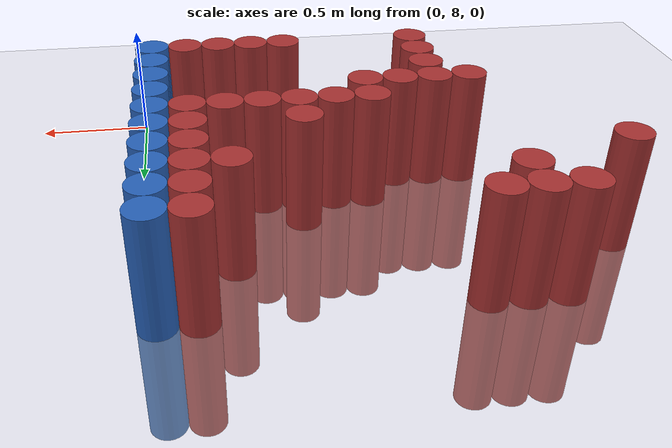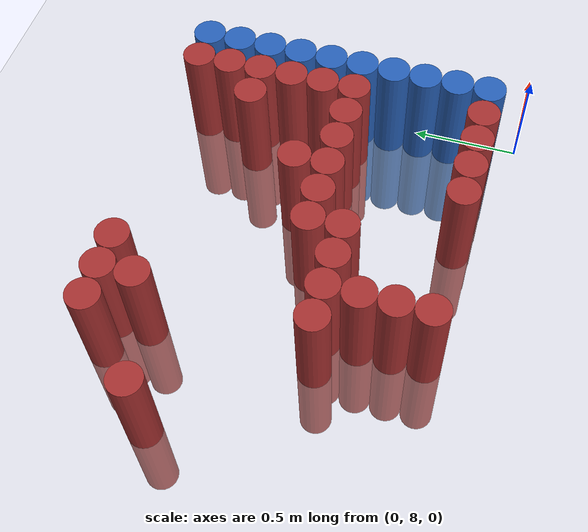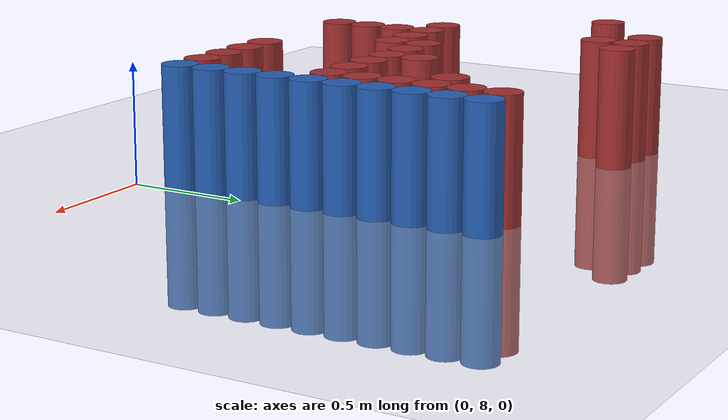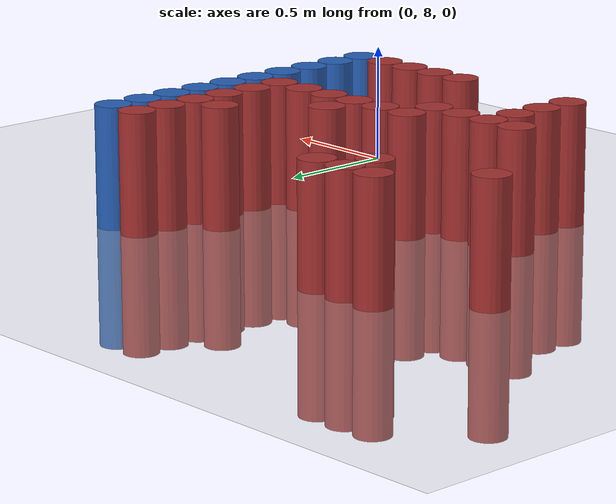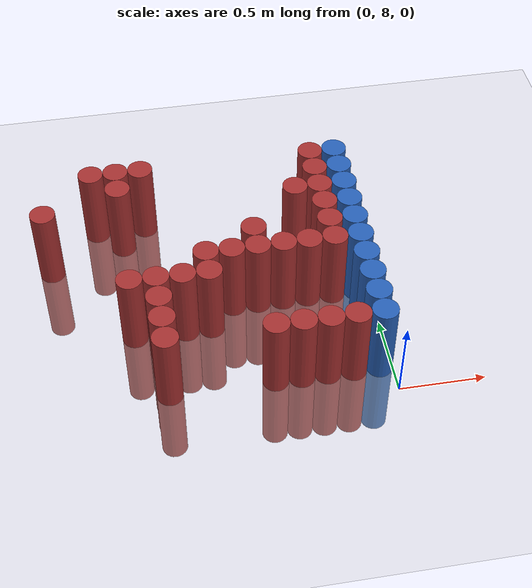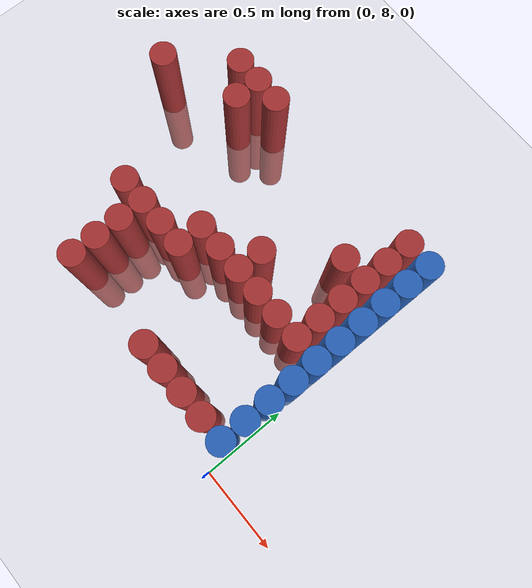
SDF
<sdf version="1.6">
 <world name="default">
  <model name="ground_plane">
   <static>1</static>
   <link name="link">
    <collision name="collision">
     <geometry><plane><normal>0 0 1</normal><size>100 100</size></plane></geometry>
     <surface><friction><ode><mu>100</mu><mu2>50</mu2></ode></friction></surface>
    </collision>
    <visual name="visual">
     <cast_shadows>0</cast_shadows>
     <geometry><plane><normal>0 0 1</normal><size>100 100</size></plane></geometry>
     <material>
      <script><uri>file://media/materials/scripts/gazebo.material</uri><name>Gazebo/Grey</name></script>
     </material>
    </visual>
   </link>
  </model>
  <model name="unit_cylinder_208">
   <static>1</static>
   <pose>-1.875000 9.225000 0.000000 0.000000 0.000000 0.000000</pose>
   <link name="link">
    <inertial>
     <mass>1</mass>
     <inertia><ixx>0.145833</ixx><ixy>0</ixy><ixz>0</ixz><iyy>0.145833</iyy><iyz>0</iyz><izz>0.125</izz></inertia>
    </inertial>
    <collision name="collision">
     <geometry><cylinder><radius>0.075000</radius><length>1</length></cylinder></geometry>
    </collision>
    <visual name="visual">
     <geometry><cylinder><radius>0.075000</radius><length>1</length></cylinder></geometry>
     <material>
      <ambient>0.648000 0.192000 0.192000 1</ambient>
      <diffuse>0.648000 0.192000 0.192000 1</diffuse>
     </material>
     <material>
      <script><name>Gazebo/Grey</name><uri>file://media/materials/scripts/gazebo.material</uri></script>
     </material>
    </visual>
    <sensor name="sensor_contact" type="contact"><contact><collision>collision</collision></contact></sensor>
   </link>
   <plugin filename="gz-sim-touchplugin-system" name="gz::sim::systems::TouchPlugin">
    <target>robot</target>
    <namespace>robot</namespace>
    <time>0.001</time>
    <enabled>true</enabled>
   </plugin>
  </model>
  <model name="unit_cylinder_225">
   <static>1</static>
   <pose>-1.575000 9.525000 0.000000 0.000000 0.000000 0.000000</pose>
   <link name="link">
    <inertial>
     <mass>1</mass>
     <inertia><ixx>0.145833</ixx><ixy>0</ixy><ixz>0</ixz><iyy>0.145833</iyy><iyz>0</iyz><izz>0.125</izz></inertia>
    </inertial>
    <collision name="collision">
     <geometry><cylinder><radius>0.075000</radius><length>1</length></cylinder></geometry>
    </collision>
    <visual name="visual">
     <geometry><cylinder><radius>0.075000</radius><length>1</length></cylinder></geometry>
     <material>
      <ambient>0.648000 0.192000 0.192000 1</ambient>
      <diffuse>0.648000 0.192000 0.192000 1</diffuse>
     </material>
     <material>
      <script><name>Gazebo/Grey</name><uri>file://media/materials/scripts/gazebo.material</uri></script>
     </material>
    </visual>
    <sensor name="sensor_contact" type="contact"><contact><collision>collision</collision></contact></sensor>
   </link>
   <plugin filename="gz-sim-touchplugin-system" name="gz::sim::systems::TouchPlugin">
    <target>robot</target>
    <namespace>robot</namespace>
    <time>0.001</time>
    <enabled>true</enabled>
   </plugin>
  </model>
  <model name="unit_cylinder_238">
   <static>1</static>
   <pose>-1.425000 8.625000 0.000000 0.000000 0.000000 0.000000</pose>
   <link name="link">
    <inertial>
     <mass>1</mass>
     <inertia><ixx>0.145833</ixx><ixy>0</ixy><ixz>0</ixz><iyy>0.145833</iyy><iyz>0</iyz><izz>0.125</izz></inertia>
    </inertial>
    <collision name="collision">
     <geometry><cylinder><radius>0.075000</radius><length>1</length></cylinder></geometry>
    </collision>
    <visual name="visual">
     <geometry><cylinder><radius>0.075000</radius><length>1</length></cylinder></geometry>
     <material>
      <ambient>0.648000 0.192000 0.192000 1</ambient>
      <diffuse>0.648000 0.192000 0.192000 1</diffuse>
     </material>
     <material>
      <script><name>Gazebo/Grey</name><uri>file://media/materials/scripts/gazebo.material</uri></script>
     </material>
    </visual>
    <sensor name="sensor_contact" type="contact"><contact><collision>collision</collision></contact></sensor>
   </link>
   <plugin filename="gz-sim-touchplugin-system" name="gz::sim::systems::TouchPlugin">
    <target>robot</target>
    <namespace>robot</namespace>
    <time>0.001</time>
    <enabled>true</enabled>
   </plugin>
  </model>
  <model name="unit_cylinder_239">
   <static>1</static>
   <pose>-1.425000 9.375000 0.000000 0.000000 0.000000 0.000000</pose>
   <link name="link">
    <inertial>
     <mass>1</mass>
     <inertia><ixx>0.145833</ixx><ixy>0</ixy><ixz>0</ixz><iyy>0.145833</iyy><iyz>0</iyz><izz>0.125</izz></inertia>
    </inertial>
    <collision name="collision">
     <geometry><cylinder><radius>0.075000</radius><length>1</length></cylinder></geometry>
    </collision>
    <visual name="visual">
     <geometry><cylinder><radius>0.075000</radius><length>1</length></cylinder></geometry>
     <material>
      <ambient>0.648000 0.192000 0.192000 1</ambient>
      <diffuse>0.648000 0.192000 0.192000 1</diffuse>
     </material>
     <material>
      <script><name>Gazebo/Grey</name><uri>file://media/materials/scripts/gazebo.material</uri></script>
     </material>
    </visual>
    <sensor name="sensor_contact" type="contact"><contact><collision>collision</collision></contact></sensor>
   </link>
   <plugin filename="gz-sim-touchplugin-system" name="gz::sim::systems::TouchPlugin">
    <target>robot</target>
    <namespace>robot</namespace>
    <time>0.001</time>
    <enabled>true</enabled>
   </plugin>
  </model>
  <model name="unit_cylinder_240">
   <static>1</static>
   <pose>-1.425000 9.525000 0.000000 0.000000 0.000000 0.000000</pose>
   <link name="link">
    <inertial>
     <mass>1</mass>
     <inertia><ixx>0.145833</ixx><ixy>0</ixy><ixz>0</ixz><iyy>0.145833</iyy><iyz>0</iyz><izz>0.125</izz></inertia>
    </inertial>
    <collision name="collision">
     <geometry><cylinder><radius>0.075000</radius><length>1</length></cylinder></geometry>
    </collision>
    <visual name="visual">
     <geometry><cylinder><radius>0.075000</radius><length>1</length></cylinder></geometry>
     <material>
      <ambient>0.648000 0.192000 0.192000 1</ambient>
      <diffuse>0.648000 0.192000 0.192000 1</diffuse>
     </material>
     <material>
      <script><name>Gazebo/Grey</name><uri>file://media/materials/scripts/gazebo.material</uri></script>
     </material>
    </visual>
    <sensor name="sensor_contact" type="contact"><contact><collision>collision</collision></contact></sensor>
   </link>
   <plugin filename="gz-sim-touchplugin-system" name="gz::sim::systems::TouchPlugin">
    <target>robot</target>
    <namespace>robot</namespace>
    <time>0.001</time>
    <enabled>true</enabled>
   </plugin>
  </model>
  <model name="unit_cylinder_254">
   <static>1</static>
   <pose>-1.275000 8.175000 0.000000 0.000000 0.000000 0.000000</pose>
   <link name="link">
    <inertial>
     <mass>1</mass>
     <inertia><ixx>0.145833</ixx><ixy>0</ixy><ixz>0</ixz><iyy>0.145833</iyy><iyz>0</iyz><izz>0.125</izz></inertia>
    </inertial>
    <collision name="collision">
     <geometry><cylinder><radius>0.075000</radius><length>1</length></cylinder></geometry>
    </collision>
    <visual name="visual">
     <geometry><cylinder><radius>0.075000</radius><length>1</length></cylinder></geometry>
     <material>
      <ambient>0.648000 0.192000 0.192000 1</ambient>
      <diffuse>0.648000 0.192000 0.192000 1</diffuse>
     </material>
     <material>
      <script><name>Gazebo/Grey</name><uri>file://media/materials/scripts/gazebo.material</uri></script>
     </material>
    </visual>
    <sensor name="sensor_contact" type="contact"><contact><collision>collision</collision></contact></sensor>
   </link>
   <plugin filename="gz-sim-touchplugin-system" name="gz::sim::systems::TouchPlugin">
    <target>robot</target>
    <namespace>robot</namespace>
    <time>0.001</time>
    <enabled>true</enabled>
   </plugin>
  </model>
  <model name="unit_cylinder_255">
   <static>1</static>
   <pose>-1.275000 8.325000 0.000000 0.000000 0.000000 0.000000</pose>
   <link name="link">
    <inertial>
     <mass>1</mass>
     <inertia><ixx>0.145833</ixx><ixy>0</ixy><ixz>0</ixz><iyy>0.145833</iyy><iyz>0</iyz><izz>0.125</izz></inertia>
    </inertial>
    <collision name="collision">
     <geometry><cylinder><radius>0.075000</radius><length>1</length></cylinder></geometry>
    </collision>
    <visual name="visual">
     <geometry><cylinder><radius>0.075000</radius><length>1</length></cylinder></geometry>
     <material>
      <ambient>0.648000 0.192000 0.192000 1</ambient>
      <diffuse>0.648000 0.192000 0.192000 1</diffuse>
     </material>
     <material>
      <script><name>Gazebo/Grey</name><uri>file://media/materials/scripts/gazebo.material</uri></script>
     </material>
    </visual>
    <sensor name="sensor_contact" type="contact"><contact><collision>collision</collision></contact></sensor>
   </link>
   <plugin filename="gz-sim-touchplugin-system" name="gz::sim::systems::TouchPlugin">
    <target>robot</target>
    <namespace>robot</namespace>
    <time>0.001</time>
    <enabled>true</enabled>
   </plugin>
  </model>
  <model name="unit_cylinder_256">
   <static>1</static>
   <pose>-1.275000 8.475000 0.000000 0.000000 0.000000 0.000000</pose>
   <link name="link">
    <inertial>
     <mass>1</mass>
     <inertia><ixx>0.145833</ixx><ixy>0</ixy><ixz>0</ixz><iyy>0.145833</iyy><iyz>0</iyz><izz>0.125</izz></inertia>
    </inertial>
    <collision name="collision">
     <geometry><cylinder><radius>0.075000</radius><length>1</length></cylinder></geometry>
    </collision>
    <visual name="visual">
     <geometry><cylinder><radius>0.075000</radius><length>1</length></cylinder></geometry>
     <material>
      <ambient>0.648000 0.192000 0.192000 1</ambient>
      <diffuse>0.648000 0.192000 0.192000 1</diffuse>
     </material>
     <material>
      <script><name>Gazebo/Grey</name><uri>file://media/materials/scripts/gazebo.material</uri></script>
     </material>
    </visual>
    <sensor name="sensor_contact" type="contact"><contact><collision>collision</collision></contact></sensor>
   </link>
   <plugin filename="gz-sim-touchplugin-system" name="gz::sim::systems::TouchPlugin">
    <target>robot</target>
    <namespace>robot</namespace>
    <time>0.001</time>
    <enabled>true</enabled>
   </plugin>
  </model>
  <model name="unit_cylinder_257">
   <static>1</static>
   <pose>-1.275000 8.625000 0.000000 0.000000 0.000000 0.000000</pose>
   <link name="link">
    <inertial>
     <mass>1</mass>
     <inertia><ixx>0.145833</ixx><ixy>0</ixy><ixz>0</ixz><iyy>0.145833</iyy><iyz>0</iyz><izz>0.125</izz></inertia>
    </inertial>
    <collision name="collision">
     <geometry><cylinder><radius>0.075000</radius><length>1</length></cylinder></geometry>
    </collision>
    <visual name="visual">
     <geometry><cylinder><radius>0.075000</radius><length>1</length></cylinder></geometry>
     <material>
      <ambient>0.648000 0.192000 0.192000 1</ambient>
      <diffuse>0.648000 0.192000 0.192000 1</diffuse>
     </material>
     <material>
      <script><name>Gazebo/Grey</name><uri>file://media/materials/scripts/gazebo.material</uri></script>
     </material>
    </visual>
    <sensor name="sensor_contact" type="contact"><contact><collision>collision</collision></contact></sensor>
   </link>
   <plugin filename="gz-sim-touchplugin-system" name="gz::sim::systems::TouchPlugin">
    <target>robot</target>
    <namespace>robot</namespace>
    <time>0.001</time>
    <enabled>true</enabled>
   </plugin>
  </model>
  <model name="unit_cylinder_258">
   <static>1</static>
   <pose>-1.275000 9.525000 0.000000 0.000000 0.000000 0.000000</pose>
   <link name="link">
    <inertial>
     <mass>1</mass>
     <inertia><ixx>0.145833</ixx><ixy>0</ixy><ixz>0</ixz><iyy>0.145833</iyy><iyz>0</iyz><izz>0.125</izz></inertia>
    </inertial>
    <collision name="collision">
     <geometry><cylinder><radius>0.075000</radius><length>1</length></cylinder></geometry>
    </collision>
    <visual name="visual">
     <geometry><cylinder><radius>0.075000</radius><length>1</length></cylinder></geometry>
     <material>
      <ambient>0.648000 0.192000 0.192000 1</ambient>
      <diffuse>0.648000 0.192000 0.192000 1</diffuse>
     </material>
     <material>
      <script><name>Gazebo/Grey</name><uri>file://media/materials/scripts/gazebo.material</uri></script>
     </material>
    </visual>
    <sensor name="sensor_contact" type="contact"><contact><collision>collision</collision></contact></sensor>
   </link>
   <plugin filename="gz-sim-touchplugin-system" name="gz::sim::systems::TouchPlugin">
    <target>robot</target>
    <namespace>robot</namespace>
    <time>0.001</time>
    <enabled>true</enabled>
   </plugin>
  </model>
  <model name="unit_cylinder_266">
   <static>1</static>
   <pose>-1.125000 8.625000 0.000000 0.000000 0.000000 0.000000</pose>
   <link name="link">
    <inertial>
     <mass>1</mass>
     <inertia><ixx>0.145833</ixx><ixy>0</ixy><ixz>0</ixz><iyy>0.145833</iyy><iyz>0</iyz><izz>0.125</izz></inertia>
    </inertial>
    <collision name="collision">
     <geometry><cylinder><radius>0.075000</radius><length>1</length></cylinder></geometry>
    </collision>
    <visual name="visual">
     <geometry><cylinder><radius>0.075000</radius><length>1</length></cylinder></geometry>
     <material>
      <ambient>0.648000 0.192000 0.192000 1</ambient>
      <diffuse>0.648000 0.192000 0.192000 1</diffuse>
     </material>
     <material>
      <script><name>Gazebo/Grey</name><uri>file://media/materials/scripts/gazebo.material</uri></script>
     </material>
    </visual>
    <sensor name="sensor_contact" type="contact"><contact><collision>collision</collision></contact></sensor>
   </link>
   <plugin filename="gz-sim-touchplugin-system" name="gz::sim::systems::TouchPlugin">
    <target>robot</target>
    <namespace>robot</namespace>
    <time>0.001</time>
    <enabled>true</enabled>
   </plugin>
  </model>
  <model name="unit_cylinder_269">
   <static>1</static>
   <pose>-0.975000 8.625000 0.000000 0.000000 0.000000 0.000000</pose>
   <link name="link">
    <inertial>
     <mass>1</mass>
     <inertia><ixx>0.145833</ixx><ixy>0</ixy><ixz>0</ixz><iyy>0.145833</iyy><iyz>0</iyz><izz>0.125</izz></inertia>
    </inertial>
    <collision name="collision">
     <geometry><cylinder><radius>0.075000</radius><length>1</length></cylinder></geometry>
    </collision>
    <visual name="visual">
     <geometry><cylinder><radius>0.075000</radius><length>1</length></cylinder></geometry>
     <material>
      <ambient>0.648000 0.192000 0.192000 1</ambient>
      <diffuse>0.648000 0.192000 0.192000 1</diffuse>
     </material>
     <material>
      <script><name>Gazebo/Grey</name><uri>file://media/materials/scripts/gazebo.material</uri></script>
     </material>
    </visual>
    <sensor name="sensor_contact" type="contact"><contact><collision>collision</collision></contact></sensor>
   </link>
   <plugin filename="gz-sim-touchplugin-system" name="gz::sim::systems::TouchPlugin">
    <target>robot</target>
    <namespace>robot</namespace>
    <time>0.001</time>
    <enabled>true</enabled>
   </plugin>
  </model>
  <model name="unit_cylinder_270">
   <static>1</static>
   <pose>-0.975000 8.775000 0.000000 0.000000 0.000000 0.000000</pose>
   <link name="link">
    <inertial>
     <mass>1</mass>
     <inertia><ixx>0.145833</ixx><ixy>0</ixy><ixz>0</ixz><iyy>0.145833</iyy><iyz>0</iyz><izz>0.125</izz></inertia>
    </inertial>
    <collision name="collision">
     <geometry><cylinder><radius>0.075000</radius><length>1</length></cylinder></geometry>
    </collision>
    <visual name="visual">
     <geometry><cylinder><radius>0.075000</radius><length>1</length></cylinder></geometry>
     <material>
      <ambient>0.648000 0.192000 0.192000 1</ambient>
      <diffuse>0.648000 0.192000 0.192000 1</diffuse>
     </material>
     <material>
      <script><name>Gazebo/Grey</name><uri>file://media/materials/scripts/gazebo.material</uri></script>
     </material>
    </visual>
    <sensor name="sensor_contact" type="contact"><contact><collision>collision</collision></contact></sensor>
   </link>
   <plugin filename="gz-sim-touchplugin-system" name="gz::sim::systems::TouchPlugin">
    <target>robot</target>
    <namespace>robot</namespace>
    <time>0.001</time>
    <enabled>true</enabled>
   </plugin>
  </model>
  <model name="unit_cylinder_272">
   <static>1</static>
   <pose>-0.825000 8.775000 0.000000 0.000000 0.000000 0.000000</pose>
   <link name="link">
    <inertial>
     <mass>1</mass>
     <inertia><ixx>0.145833</ixx><ixy>0</ixy><ixz>0</ixz><iyy>0.145833</iyy><iyz>0</iyz><izz>0.125</izz></inertia>
    </inertial>
    <collision name="collision">
     <geometry><cylinder><radius>0.075000</radius><length>1</length></cylinder></geometry>
    </collision>
    <visual name="visual">
     <geometry><cylinder><radius>0.075000</radius><length>1</length></cylinder></geometry>
     <material>
      <ambient>0.648000 0.192000 0.192000 1</ambient>
      <diffuse>0.648000 0.192000 0.192000 1</diffuse>
     </material>
     <material>
      <script><name>Gazebo/Grey</name><uri>file://media/materials/scripts/gazebo.material</uri></script>
     </material>
    </visual>
    <sensor name="sensor_contact" type="contact"><contact><collision>collision</collision></contact></sensor>
   </link>
   <plugin filename="gz-sim-touchplugin-system" name="gz::sim::systems::TouchPlugin">
    <target>robot</target>
    <namespace>robot</namespace>
    <time>0.001</time>
    <enabled>true</enabled>
   </plugin>
  </model>
  <model name="unit_cylinder_274">
   <static>1</static>
   <pose>-0.675000 8.175000 0.000000 0.000000 0.000000 0.000000</pose>
   <link name="link">
    <inertial>
     <mass>1</mass>
     <inertia><ixx>0.145833</ixx><ixy>0</ixy><ixz>0</ixz><iyy>0.145833</iyy><iyz>0</iyz><izz>0.125</izz></inertia>
    </inertial>
    <collision name="collision">
     <geometry><cylinder><radius>0.075000</radius><length>1</length></cylinder></geometry>
    </collision>
    <visual name="visual">
     <geometry><cylinder><radius>0.075000</radius><length>1</length></cylinder></geometry>
     <material>
      <ambient>0.648000 0.192000 0.192000 1</ambient>
      <diffuse>0.648000 0.192000 0.192000 1</diffuse>
     </material>
     <material>
      <script><name>Gazebo/Grey</name><uri>file://media/materials/scripts/gazebo.material</uri></script>
     </material>
    </visual>
    <sensor name="sensor_contact" type="contact"><contact><collision>collision</collision></contact></sensor>
   </link>
   <plugin filename="gz-sim-touchplugin-system" name="gz::sim::systems::TouchPlugin">
    <target>robot</target>
    <namespace>robot</namespace>
    <time>0.001</time>
    <enabled>true</enabled>
   </plugin>
  </model>
  <model name="unit_cylinder_275">
   <static>1</static>
   <pose>-0.675000 8.775000 0.000000 0.000000 0.000000 0.000000</pose>
   <link name="link">
    <inertial>
     <mass>1</mass>
     <inertia><ixx>0.145833</ixx><ixy>0</ixy><ixz>0</ixz><iyy>0.145833</iyy><iyz>0</iyz><izz>0.125</izz></inertia>
    </inertial>
    <collision name="collision">
     <geometry><cylinder><radius>0.075000</radius><length>1</length></cylinder></geometry>
    </collision>
    <visual name="visual">
     <geometry><cylinder><radius>0.075000</radius><length>1</length></cylinder></geometry>
     <material>
      <ambient>0.648000 0.192000 0.192000 1</ambient>
      <diffuse>0.648000 0.192000 0.192000 1</diffuse>
     </material>
     <material>
      <script><name>Gazebo/Grey</name><uri>file://media/materials/scripts/gazebo.material</uri></script>
     </material>
    </visual>
    <sensor name="sensor_contact" type="contact"><contact><collision>collision</collision></contact></sensor>
   </link>
   <plugin filename="gz-sim-touchplugin-system" name="gz::sim::systems::TouchPlugin">
    <target>robot</target>
    <namespace>robot</namespace>
    <time>0.001</time>
    <enabled>true</enabled>
   </plugin>
  </model>
  <model name="unit_cylinder_276">
   <static>1</static>
   <pose>-0.675000 8.925000 0.000000 0.000000 0.000000 0.000000</pose>
   <link name="link">
    <inertial>
     <mass>1</mass>
     <inertia><ixx>0.145833</ixx><ixy>0</ixy><ixz>0</ixz><iyy>0.145833</iyy><iyz>0</iyz><izz>0.125</izz></inertia>
    </inertial>
    <collision name="collision">
     <geometry><cylinder><radius>0.075000</radius><length>1</length></cylinder></geometry>
    </collision>
    <visual name="visual">
     <geometry><cylinder><radius>0.075000</radius><length>1</length></cylinder></geometry>
     <material>
      <ambient>0.648000 0.192000 0.192000 1</ambient>
      <diffuse>0.648000 0.192000 0.192000 1</diffuse>
     </material>
     <material>
      <script><name>Gazebo/Grey</name><uri>file://media/materials/scripts/gazebo.material</uri></script>
     </material>
    </visual>
    <sensor name="sensor_contact" type="contact"><contact><collision>collision</collision></contact></sensor>
   </link>
   <plugin filename="gz-sim-touchplugin-system" name="gz::sim::systems::TouchPlugin">
    <target>robot</target>
    <namespace>robot</namespace>
    <time>0.001</time>
    <enabled>true</enabled>
   </plugin>
  </model>
  <model name="unit_cylinder_281">
   <static>1</static>
   <pose>-0.525000 8.175000 0.000000 0.000000 0.000000 0.000000</pose>
   <link name="link">
    <inertial>
     <mass>1</mass>
     <inertia><ixx>0.145833</ixx><ixy>0</ixy><ixz>0</ixz><iyy>0.145833</iyy><iyz>0</iyz><izz>0.125</izz></inertia>
    </inertial>
    <collision name="collision">
     <geometry><cylinder><radius>0.075000</radius><length>1</length></cylinder></geometry>
    </collision>
    <visual name="visual">
     <geometry><cylinder><radius>0.075000</radius><length>1</length></cylinder></geometry>
     <material>
      <ambient>0.648000 0.192000 0.192000 1</ambient>
      <diffuse>0.648000 0.192000 0.192000 1</diffuse>
     </material>
     <material>
      <script><name>Gazebo/Grey</name><uri>file://media/materials/scripts/gazebo.material</uri></script>
     </material>
    </visual>
    <sensor name="sensor_contact" type="contact"><contact><collision>collision</collision></contact></sensor>
   </link>
   <plugin filename="gz-sim-touchplugin-system" name="gz::sim::systems::TouchPlugin">
    <target>robot</target>
    <namespace>robot</namespace>
    <time>0.001</time>
    <enabled>true</enabled>
   </plugin>
  </model>
  <model name="unit_cylinder_282">
   <static>1</static>
   <pose>-0.525000 8.775000 0.000000 0.000000 0.000000 0.000000</pose>
   <link name="link">
    <inertial>
     <mass>1</mass>
     <inertia><ixx>0.145833</ixx><ixy>0</ixy><ixz>0</ixz><iyy>0.145833</iyy><iyz>0</iyz><izz>0.125</izz></inertia>
    </inertial>
    <collision name="collision">
     <geometry><cylinder><radius>0.075000</radius><length>1</length></cylinder></geometry>
    </collision>
    <visual name="visual">
     <geometry><cylinder><radius>0.075000</radius><length>1</length></cylinder></geometry>
     <material>
      <ambient>0.648000 0.192000 0.192000 1</ambient>
      <diffuse>0.648000 0.192000 0.192000 1</diffuse>
     </material>
     <material>
      <script><name>Gazebo/Grey</name><uri>file://media/materials/scripts/gazebo.material</uri></script>
     </material>
    </visual>
    <sensor name="sensor_contact" type="contact"><contact><collision>collision</collision></contact></sensor>
   </link>
   <plugin filename="gz-sim-touchplugin-system" name="gz::sim::systems::TouchPlugin">
    <target>robot</target>
    <namespace>robot</namespace>
    <time>0.001</time>
    <enabled>true</enabled>
   </plugin>
  </model>
  <model name="unit_cylinder_289">
   <static>1</static>
   <pose>-0.375000 8.175000 0.000000 0.000000 0.000000 0.000000</pose>
   <link name="link">
    <inertial>
     <mass>1</mass>
     <inertia><ixx>0.145833</ixx><ixy>0</ixy><ixz>0</ixz><iyy>0.145833</iyy><iyz>0</iyz><izz>0.125</izz></inertia>
    </inertial>
    <collision name="collision">
     <geometry><cylinder><radius>0.075000</radius><length>1</length></cylinder></geometry>
    </collision>
    <visual name="visual">
     <geometry><cylinder><radius>0.075000</radius><length>1</length></cylinder></geometry>
     <material>
      <ambient>0.648000 0.192000 0.192000 1</ambient>
      <diffuse>0.648000 0.192000 0.192000 1</diffuse>
     </material>
     <material>
      <script><name>Gazebo/Grey</name><uri>file://media/materials/scripts/gazebo.material</uri></script>
     </material>
    </visual>
    <sensor name="sensor_contact" type="contact"><contact><collision>collision</collision></contact></sensor>
   </link>
   <plugin filename="gz-sim-touchplugin-system" name="gz::sim::systems::TouchPlugin">
    <target>robot</target>
    <namespace>robot</namespace>
    <time>0.001</time>
    <enabled>true</enabled>
   </plugin>
  </model>
  <model name="unit_cylinder_290">
   <static>1</static>
   <pose>-0.375000 8.775000 0.000000 0.000000 0.000000 0.000000</pose>
   <link name="link">
    <inertial>
     <mass>1</mass>
     <inertia><ixx>0.145833</ixx><ixy>0</ixy><ixz>0</ixz><iyy>0.145833</iyy><iyz>0</iyz><izz>0.125</izz></inertia>
    </inertial>
    <collision name="collision">
     <geometry><cylinder><radius>0.075000</radius><length>1</length></cylinder></geometry>
    </collision>
    <visual name="visual">
     <geometry><cylinder><radius>0.075000</radius><length>1</length></cylinder></geometry>
     <material>
      <ambient>0.648000 0.192000 0.192000 1</ambient>
      <diffuse>0.648000 0.192000 0.192000 1</diffuse>
     </material>
     <material>
      <script><name>Gazebo/Grey</name><uri>file://media/materials/scripts/gazebo.material</uri></script>
     </material>
    </visual>
    <sensor name="sensor_contact" type="contact"><contact><collision>collision</collision></contact></sensor>
   </link>
   <plugin filename="gz-sim-touchplugin-system" name="gz::sim::systems::TouchPlugin">
    <target>robot</target>
    <namespace>robot</namespace>
    <time>0.001</time>
    <enabled>true</enabled>
   </plugin>
  </model>
  <model name="unit_cylinder_291">
   <static>1</static>
   <pose>-0.375000 9.225000 0.000000 0.000000 0.000000 0.000000</pose>
   <link name="link">
    <inertial>
     <mass>1</mass>
     <inertia><ixx>0.145833</ixx><ixy>0</ixy><ixz>0</ixz><iyy>0.145833</iyy><iyz>0</iyz><izz>0.125</izz></inertia>
    </inertial>
    <collision name="collision">
     <geometry><cylinder><radius>0.075000</radius><length>1</length></cylinder></geometry>
    </collision>
    <visual name="visual">
     <geometry><cylinder><radius>0.075000</radius><length>1</length></cylinder></geometry>
     <material>
      <ambient>0.648000 0.192000 0.192000 1</ambient>
      <diffuse>0.648000 0.192000 0.192000 1</diffuse>
     </material>
     <material>
      <script><name>Gazebo/Grey</name><uri>file://media/materials/scripts/gazebo.material</uri></script>
     </material>
    </visual>
    <sensor name="sensor_contact" type="contact"><contact><collision>collision</collision></contact></sensor>
   </link>
   <plugin filename="gz-sim-touchplugin-system" name="gz::sim::systems::TouchPlugin">
    <target>robot</target>
    <namespace>robot</namespace>
    <time>0.001</time>
    <enabled>true</enabled>
   </plugin>
  </model>
  <model name="unit_cylinder_308">
   <static>1</static>
   <pose>-0.225000 8.175000 0.000000 0.000000 0.000000 0.000000</pose>
   <link name="link">
    <inertial>
     <mass>1</mass>
     <inertia><ixx>0.145833</ixx><ixy>0</ixy><ixz>0</ixz><iyy>0.145833</iyy><iyz>0</iyz><izz>0.125</izz></inertia>
    </inertial>
    <collision name="collision">
     <geometry><cylinder><radius>0.075000</radius><length>1</length></cylinder></geometry>
    </collision>
    <visual name="visual">
     <geometry><cylinder><radius>0.075000</radius><length>1</length></cylinder></geometry>
     <material>
      <ambient>0.648000 0.192000 0.192000 1</ambient>
      <diffuse>0.648000 0.192000 0.192000 1</diffuse>
     </material>
     <material>
      <script><name>Gazebo/Grey</name><uri>file://media/materials/scripts/gazebo.material</uri></script>
     </material>
    </visual>
    <sensor name="sensor_contact" type="contact"><contact><collision>collision</collision></contact></sensor>
   </link>
   <plugin filename="gz-sim-touchplugin-system" name="gz::sim::systems::TouchPlugin">
    <target>robot</target>
    <namespace>robot</namespace>
    <time>0.001</time>
    <enabled>true</enabled>
   </plugin>
  </model>
  <model name="unit_cylinder_309">
   <static>1</static>
   <pose>-0.225000 8.775000 0.000000 0.000000 0.000000 0.000000</pose>
   <link name="link">
    <inertial>
     <mass>1</mass>
     <inertia><ixx>0.145833</ixx><ixy>0</ixy><ixz>0</ixz><iyy>0.145833</iyy><iyz>0</iyz><izz>0.125</izz></inertia>
    </inertial>
    <collision name="collision">
     <geometry><cylinder><radius>0.075000</radius><length>1</length></cylinder></geometry>
    </collision>
    <visual name="visual">
     <geometry><cylinder><radius>0.075000</radius><length>1</length></cylinder></geometry>
     <material>
      <ambient>0.648000 0.192000 0.192000 1</ambient>
      <diffuse>0.648000 0.192000 0.192000 1</diffuse>
     </material>
     <material>
      <script><name>Gazebo/Grey</name><uri>file://media/materials/scripts/gazebo.material</uri></script>
     </material>
    </visual>
    <sensor name="sensor_contact" type="contact"><contact><collision>collision</collision></contact></sensor>
   </link>
   <plugin filename="gz-sim-touchplugin-system" name="gz::sim::systems::TouchPlugin">
    <target>robot</target>
    <namespace>robot</namespace>
    <time>0.001</time>
    <enabled>true</enabled>
   </plugin>
  </model>
  <model name="unit_cylinder_310">
   <static>1</static>
   <pose>-0.225000 8.925000 0.000000 0.000000 0.000000 0.000000</pose>
   <link name="link">
    <inertial>
     <mass>1</mass>
     <inertia><ixx>0.145833</ixx><ixy>0</ixy><ixz>0</ixz><iyy>0.145833</iyy><iyz>0</iyz><izz>0.125</izz></inertia>
    </inertial>
    <collision name="collision">
     <geometry><cylinder><radius>0.075000</radius><length>1</length></cylinder></geometry>
    </collision>
    <visual name="visual">
     <geometry><cylinder><radius>0.075000</radius><length>1</length></cylinder></geometry>
     <material>
      <ambient>0.648000 0.192000 0.192000 1</ambient>
      <diffuse>0.648000 0.192000 0.192000 1</diffuse>
     </material>
     <material>
      <script><name>Gazebo/Grey</name><uri>file://media/materials/scripts/gazebo.material</uri></script>
     </material>
    </visual>
    <sensor name="sensor_contact" type="contact"><contact><collision>collision</collision></contact></sensor>
   </link>
   <plugin filename="gz-sim-touchplugin-system" name="gz::sim::systems::TouchPlugin">
    <target>robot</target>
    <namespace>robot</namespace>
    <time>0.001</time>
    <enabled>true</enabled>
   </plugin>
  </model>
  <model name="unit_cylinder_311">
   <static>1</static>
   <pose>-0.225000 9.075000 0.000000 0.000000 0.000000 0.000000</pose>
   <link name="link">
    <inertial>
     <mass>1</mass>
     <inertia><ixx>0.145833</ixx><ixy>0</ixy><ixz>0</ixz><iyy>0.145833</iyy><iyz>0</iyz><izz>0.125</izz></inertia>
    </inertial>
    <collision name="collision">
     <geometry><cylinder><radius>0.075000</radius><length>1</length></cylinder></geometry>
    </collision>
    <visual name="visual">
     <geometry><cylinder><radius>0.075000</radius><length>1</length></cylinder></geometry>
     <material>
      <ambient>0.648000 0.192000 0.192000 1</ambient>
      <diffuse>0.648000 0.192000 0.192000 1</diffuse>
     </material>
     <material>
      <script><name>Gazebo/Grey</name><uri>file://media/materials/scripts/gazebo.material</uri></script>
     </material>
    </visual>
    <sensor name="sensor_contact" type="contact"><contact><collision>collision</collision></contact></sensor>
   </link>
   <plugin filename="gz-sim-touchplugin-system" name="gz::sim::systems::TouchPlugin">
    <target>robot</target>
    <namespace>robot</namespace>
    <time>0.001</time>
    <enabled>true</enabled>
   </plugin>
  </model>
  <model name="unit_cylinder_312">
   <static>1</static>
   <pose>-0.225000 9.225000 0.000000 0.000000 0.000000 0.000000</pose>
   <link name="link">
    <inertial>
     <mass>1</mass>
     <inertia><ixx>0.145833</ixx><ixy>0</ixy><ixz>0</ixz><iyy>0.145833</iyy><iyz>0</iyz><izz>0.125</izz></inertia>
    </inertial>
    <collision name="collision">
     <geometry><cylinder><radius>0.075000</radius><length>1</length></cylinder></geometry>
    </collision>
    <visual name="visual">
     <geometry><cylinder><radius>0.075000</radius><length>1</length></cylinder></geometry>
     <material>
      <ambient>0.648000 0.192000 0.192000 1</ambient>
      <diffuse>0.648000 0.192000 0.192000 1</diffuse>
     </material>
     <material>
      <script><name>Gazebo/Grey</name><uri>file://media/materials/scripts/gazebo.material</uri></script>
     </material>
    </visual>
    <sensor name="sensor_contact" type="contact"><contact><collision>collision</collision></contact></sensor>
   </link>
   <plugin filename="gz-sim-touchplugin-system" name="gz::sim::systems::TouchPlugin">
    <target>robot</target>
    <namespace>robot</namespace>
    <time>0.001</time>
    <enabled>true</enabled>
   </plugin>
  </model>
  <model name="unit_cylinder_313">
   <static>1</static>
   <pose>-0.225000 9.375000 0.000000 0.000000 0.000000 0.000000</pose>
   <link name="link">
    <inertial>
     <mass>1</mass>
     <inertia><ixx>0.145833</ixx><ixy>0</ixy><ixz>0</ixz><iyy>0.145833</iyy><iyz>0</iyz><izz>0.125</izz></inertia>
    </inertial>
    <collision name="collision">
     <geometry><cylinder><radius>0.075000</radius><length>1</length></cylinder></geometry>
    </collision>
    <visual name="visual">
     <geometry><cylinder><radius>0.075000</radius><length>1</length></cylinder></geometry>
     <material>
      <ambient>0.648000 0.192000 0.192000 1</ambient>
      <diffuse>0.648000 0.192000 0.192000 1</diffuse>
     </material>
     <material>
      <script><name>Gazebo/Grey</name><uri>file://media/materials/scripts/gazebo.material</uri></script>
     </material>
    </visual>
    <sensor name="sensor_contact" type="contact"><contact><collision>collision</collision></contact></sensor>
   </link>
   <plugin filename="gz-sim-touchplugin-system" name="gz::sim::systems::TouchPlugin">
    <target>robot</target>
    <namespace>robot</namespace>
    <time>0.001</time>
    <enabled>true</enabled>
   </plugin>
  </model>
  <model name="unit_cylinder_314">
   <static>1</static>
   <pose>-0.225000 9.525000 0.000000 0.000000 0.000000 0.000000</pose>
   <link name="link">
    <inertial>
     <mass>1</mass>
     <inertia><ixx>0.145833</ixx><ixy>0</ixy><ixz>0</ixz><iyy>0.145833</iyy><iyz>0</iyz><izz>0.125</izz></inertia>
    </inertial>
    <collision name="collision">
     <geometry><cylinder><radius>0.075000</radius><length>1</length></cylinder></geometry>
    </collision>
    <visual name="visual">
     <geometry><cylinder><radius>0.075000</radius><length>1</length></cylinder></geometry>
     <material>
      <ambient>0.648000 0.192000 0.192000 1</ambient>
      <diffuse>0.648000 0.192000 0.192000 1</diffuse>
     </material>
     <material>
      <script><name>Gazebo/Grey</name><uri>file://media/materials/scripts/gazebo.material</uri></script>
     </material>
    </visual>
    <sensor name="sensor_contact" type="contact"><contact><collision>collision</collision></contact></sensor>
   </link>
   <plugin filename="gz-sim-touchplugin-system" name="gz::sim::systems::TouchPlugin">
    <target>robot</target>
    <namespace>robot</namespace>
    <time>0.001</time>
    <enabled>true</enabled>
   </plugin>
  </model>
  <model name="unit_cylinder_335">
   <static>1</static>
   <pose>-0.075000 8.175000 0.000000 0.000000 0.000000 0.000000</pose>
   <link name="link">
    <inertial>
     <mass>1</mass>
     <inertia><ixx>0.145833</ixx><ixy>0</ixy><ixz>0</ixz><iyy>0.145833</iyy><iyz>0</iyz><izz>0.125</izz></inertia>
    </inertial>
    <collision name="collision">
     <geometry><cylinder><radius>0.075000</radius><length>1</length></cylinder></geometry>
    </collision>
    <visual name="visual">
     <geometry><cylinder><radius>0.075000</radius><length>1</length></cylinder></geometry>
     <material>
      <ambient>0.152000 0.379000 0.720000 1</ambient>
      <diffuse>0.152000 0.379000 0.720000 1</diffuse>
     </material>
     <material>
      <script><name>Gazebo/Grey</name><uri>file://media/materials/scripts/gazebo.material</uri></script>
     </material>
    </visual>
    <sensor name="sensor_contact" type="contact"><contact><collision>collision</collision></contact></sensor>
   </link>
   <plugin filename="gz-sim-touchplugin-system" name="gz::sim::systems::TouchPlugin">
    <target>robot</target>
    <namespace>robot</namespace>
    <time>0.001</time>
    <enabled>true</enabled>
   </plugin>
  </model>
  <model name="unit_cylinder_336">
   <static>1</static>
   <pose>-0.075000 8.325000 0.000000 0.000000 0.000000 0.000000</pose>
   <link name="link">
    <inertial>
     <mass>1</mass>
     <inertia><ixx>0.145833</ixx><ixy>0</ixy><ixz>0</ixz><iyy>0.145833</iyy><iyz>0</iyz><izz>0.125</izz></inertia>
    </inertial>
    <collision name="collision">
     <geometry><cylinder><radius>0.075000</radius><length>1</length></cylinder></geometry>
    </collision>
    <visual name="visual">
     <geometry><cylinder><radius>0.075000</radius><length>1</length></cylinder></geometry>
     <material>
      <ambient>0.152000 0.379000 0.720000 1</ambient>
      <diffuse>0.152000 0.379000 0.720000 1</diffuse>
     </material>
     <material>
      <script><name>Gazebo/Grey</name><uri>file://media/materials/scripts/gazebo.material</uri></script>
     </material>
    </visual>
    <sensor name="sensor_contact" type="contact"><contact><collision>collision</collision></contact></sensor>
   </link>
   <plugin filename="gz-sim-touchplugin-system" name="gz::sim::systems::TouchPlugin">
    <target>robot</target>
    <namespace>robot</namespace>
    <time>0.001</time>
    <enabled>true</enabled>
   </plugin>
  </model>
  <model name="unit_cylinder_337">
   <static>1</static>
   <pose>-0.075000 8.475000 0.000000 0.000000 0.000000 0.000000</pose>
   <link name="link">
    <inertial>
     <mass>1</mass>
     <inertia><ixx>0.145833</ixx><ixy>0</ixy><ixz>0</ixz><iyy>0.145833</iyy><iyz>0</iyz><izz>0.125</izz></inertia>
    </inertial>
    <collision name="collision">
     <geometry><cylinder><radius>0.075000</radius><length>1</length></cylinder></geometry>
    </collision>
    <visual name="visual">
     <geometry><cylinder><radius>0.075000</radius><length>1</length></cylinder></geometry>
     <material>
      <ambient>0.152000 0.379000 0.720000 1</ambient>
      <diffuse>0.152000 0.379000 0.720000 1</diffuse>
     </material>
     <material>
      <script><name>Gazebo/Grey</name><uri>file://media/materials/scripts/gazebo.material</uri></script>
     </material>
    </visual>
    <sensor name="sensor_contact" type="contact"><contact><collision>collision</collision></contact></sensor>
   </link>
   <plugin filename="gz-sim-touchplugin-system" name="gz::sim::systems::TouchPlugin">
    <target>robot</target>
    <namespace>robot</namespace>
    <time>0.001</time>
    <enabled>true</enabled>
   </plugin>
  </model>
  <model name="unit_cylinder_338">
   <static>1</static>
   <pose>-0.075000 8.625000 0.000000 0.000000 0.000000 0.000000</pose>
   <link name="link">
    <inertial>
     <mass>1</mass>
     <inertia><ixx>0.145833</ixx><ixy>0</ixy><ixz>0</ixz><iyy>0.145833</iyy><iyz>0</iyz><izz>0.125</izz></inertia>
    </inertial>
    <collision name="collision">
     <geometry><cylinder><radius>0.075000</radius><length>1</length></cylinder></geometry>
    </collision>
    <visual name="visual">
     <geometry><cylinder><radius>0.075000</radius><length>1</length></cylinder></geometry>
     <material>
      <ambient>0.152000 0.379000 0.720000 1</ambient>
      <diffuse>0.152000 0.379000 0.720000 1</diffuse>
     </material>
     <material>
      <script><name>Gazebo/Grey</name><uri>file://media/materials/scripts/gazebo.material</uri></script>
     </material>
    </visual>
    <sensor name="sensor_contact" type="contact"><contact><collision>collision</collision></contact></sensor>
   </link>
   <plugin filename="gz-sim-touchplugin-system" name="gz::sim::systems::TouchPlugin">
    <target>robot</target>
    <namespace>robot</namespace>
    <time>0.001</time>
    <enabled>true</enabled>
   </plugin>
  </model>
  <model name="unit_cylinder_339">
   <static>1</static>
   <pose>-0.075000 8.775000 0.000000 0.000000 0.000000 0.000000</pose>
   <link name="link">
    <inertial>
     <mass>1</mass>
     <inertia><ixx>0.145833</ixx><ixy>0</ixy><ixz>0</ixz><iyy>0.145833</iyy><iyz>0</iyz><izz>0.125</izz></inertia>
    </inertial>
    <collision name="collision">
     <geometry><cylinder><radius>0.075000</radius><length>1</length></cylinder></geometry>
    </collision>
    <visual name="visual">
     <geometry><cylinder><radius>0.075000</radius><length>1</length></cylinder></geometry>
     <material>
      <ambient>0.152000 0.379000 0.720000 1</ambient>
      <diffuse>0.152000 0.379000 0.720000 1</diffuse>
     </material>
     <material>
      <script><name>Gazebo/Grey</name><uri>file://media/materials/scripts/gazebo.material</uri></script>
     </material>
    </visual>
    <sensor name="sensor_contact" type="contact"><contact><collision>collision</collision></contact></sensor>
   </link>
   <plugin filename="gz-sim-touchplugin-system" name="gz::sim::systems::TouchPlugin">
    <target>robot</target>
    <namespace>robot</namespace>
    <time>0.001</time>
    <enabled>true</enabled>
   </plugin>
  </model>
  <model name="unit_cylinder_340">
   <static>1</static>
   <pose>-0.075000 8.925000 0.000000 0.000000 0.000000 0.000000</pose>
   <link name="link">
    <inertial>
     <mass>1</mass>
     <inertia><ixx>0.145833</ixx><ixy>0</ixy><ixz>0</ixz><iyy>0.145833</iyy><iyz>0</iyz><izz>0.125</izz></inertia>
    </inertial>
    <collision name="collision">
     <geometry><cylinder><radius>0.075000</radius><length>1</length></cylinder></geometry>
    </collision>
    <visual name="visual">
     <geometry><cylinder><radius>0.075000</radius><length>1</length></cylinder></geometry>
     <material>
      <ambient>0.152000 0.379000 0.720000 1</ambient>
      <diffuse>0.152000 0.379000 0.720000 1</diffuse>
     </material>
     <material>
      <script><name>Gazebo/Grey</name><uri>file://media/materials/scripts/gazebo.material</uri></script>
     </material>
    </visual>
    <sensor name="sensor_contact" type="contact"><contact><collision>collision</collision></contact></sensor>
   </link>
   <plugin filename="gz-sim-touchplugin-system" name="gz::sim::systems::TouchPlugin">
    <target>robot</target>
    <namespace>robot</namespace>
    <time>0.001</time>
    <enabled>true</enabled>
   </plugin>
  </model>
  <model name="unit_cylinder_341">
   <static>1</static>
   <pose>-0.075000 9.075000 0.000000 0.000000 0.000000 0.000000</pose>
   <link name="link">
    <inertial>
     <mass>1</mass>
     <inertia><ixx>0.145833</ixx><ixy>0</ixy><ixz>0</ixz><iyy>0.145833</iyy><iyz>0</iyz><izz>0.125</izz></inertia>
    </inertial>
    <collision name="collision">
     <geometry><cylinder><radius>0.075000</radius><length>1</length></cylinder></geometry>
    </collision>
    <visual name="visual">
     <geometry><cylinder><radius>0.075000</radius><length>1</length></cylinder></geometry>
     <material>
      <ambient>0.152000 0.379000 0.720000 1</ambient>
      <diffuse>0.152000 0.379000 0.720000 1</diffuse>
     </material>
     <material>
      <script><name>Gazebo/Grey</name><uri>file://media/materials/scripts/gazebo.material</uri></script>
     </material>
    </visual>
    <sensor name="sensor_contact" type="contact"><contact><collision>collision</collision></contact></sensor>
   </link>
   <plugin filename="gz-sim-touchplugin-system" name="gz::sim::systems::TouchPlugin">
    <target>robot</target>
    <namespace>robot</namespace>
    <time>0.001</time>
    <enabled>true</enabled>
   </plugin>
  </model>
  <model name="unit_cylinder_342">
   <static>1</static>
   <pose>-0.075000 9.225000 0.000000 0.000000 0.000000 0.000000</pose>
   <link name="link">
    <inertial>
     <mass>1</mass>
     <inertia><ixx>0.145833</ixx><ixy>0</ixy><ixz>0</ixz><iyy>0.145833</iyy><iyz>0</iyz><izz>0.125</izz></inertia>
    </inertial>
    <collision name="collision">
     <geometry><cylinder><radius>0.075000</radius><length>1</length></cylinder></geometry>
    </collision>
    <visual name="visual">
     <geometry><cylinder><radius>0.075000</radius><length>1</length></cylinder></geometry>
     <material>
      <ambient>0.152000 0.379000 0.720000 1</ambient>
      <diffuse>0.152000 0.379000 0.720000 1</diffuse>
     </material>
     <material>
      <script><name>Gazebo/Grey</name><uri>file://media/materials/scripts/gazebo.material</uri></script>
     </material>
    </visual>
    <sensor name="sensor_contact" type="contact"><contact><collision>collision</collision></contact></sensor>
   </link>
   <plugin filename="gz-sim-touchplugin-system" name="gz::sim::systems::TouchPlugin">
    <target>robot</target>
    <namespace>robot</namespace>
    <time>0.001</time>
    <enabled>true</enabled>
   </plugin>
  </model>
  <model name="unit_cylinder_343">
   <static>1</static>
   <pose>-0.075000 9.375000 0.000000 0.000000 0.000000 0.000000</pose>
   <link name="link">
    <inertial>
     <mass>1</mass>
     <inertia><ixx>0.145833</ixx><ixy>0</ixy><ixz>0</ixz><iyy>0.145833</iyy><iyz>0</iyz><izz>0.125</izz></inertia>
    </inertial>
    <collision name="collision">
     <geometry><cylinder><radius>0.075000</radius><length>1</length></cylinder></geometry>
    </collision>
    <visual name="visual">
     <geometry><cylinder><radius>0.075000</radius><length>1</length></cylinder></geometry>
     <material>
      <ambient>0.152000 0.379000 0.720000 1</ambient>
      <diffuse>0.152000 0.379000 0.720000 1</diffuse>
     </material>
     <material>
      <script><name>Gazebo/Grey</name><uri>file://media/materials/scripts/gazebo.material</uri></script>
     </material>
    </visual>
    <sensor name="sensor_contact" type="contact"><contact><collision>collision</collision></contact></sensor>
   </link>
   <plugin filename="gz-sim-touchplugin-system" name="gz::sim::systems::TouchPlugin">
    <target>robot</target>
    <namespace>robot</namespace>
    <time>0.001</time>
    <enabled>true</enabled>
   </plugin>
  </model>
  <model name="unit_cylinder_344">
   <static>1</static>
   <pose>-0.075000 9.525000 0.000000 0.000000 0.000000 0.000000</pose>
   <link name="link">
    <inertial>
     <mass>1</mass>
     <inertia><ixx>0.145833</ixx><ixy>0</ixy><ixz>0</ixz><iyy>0.145833</iyy><iyz>0</iyz><izz>0.125</izz></inertia>
    </inertial>
    <collision name="collision">
     <geometry><cylinder><radius>0.075000</radius><length>1</length></cylinder></geometry>
    </collision>
    <visual name="visual">
     <geometry><cylinder><radius>0.075000</radius><length>1</length></cylinder></geometry>
     <material>
      <ambient>0.152000 0.379000 0.720000 1</ambient>
      <diffuse>0.152000 0.379000 0.720000 1</diffuse>
     </material>
     <material>
      <script><name>Gazebo/Grey</name><uri>file://media/materials/scripts/gazebo.material</uri></script>
     </material>
    </visual>
    <sensor name="sensor_contact" type="contact"><contact><collision>collision</collision></contact></sensor>
   </link>
   <plugin filename="gz-sim-touchplugin-system" name="gz::sim::systems::TouchPlugin">
    <target>robot</target>
    <namespace>robot</namespace>
    <time>0.001</time>
    <enabled>true</enabled>
   </plugin>
  </model>
 </world>
</sdf>
